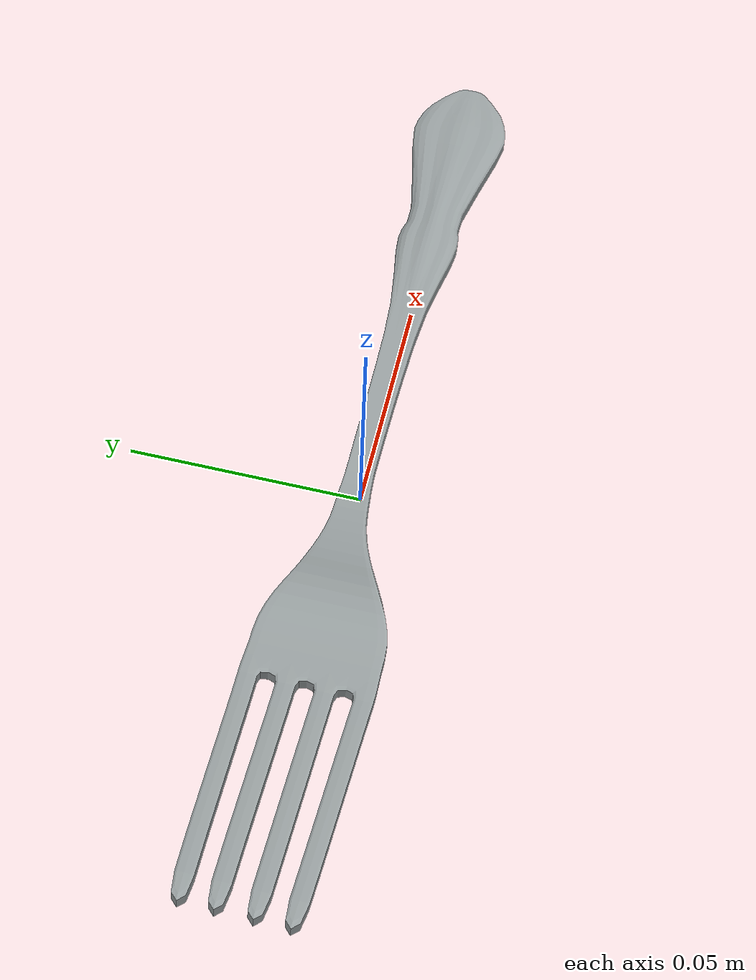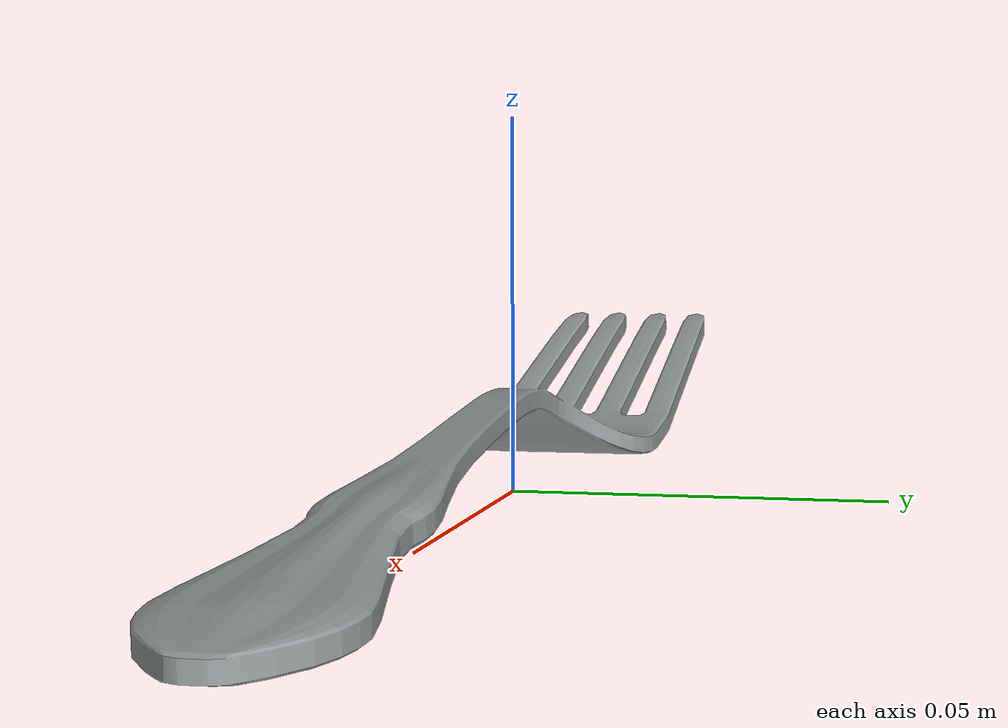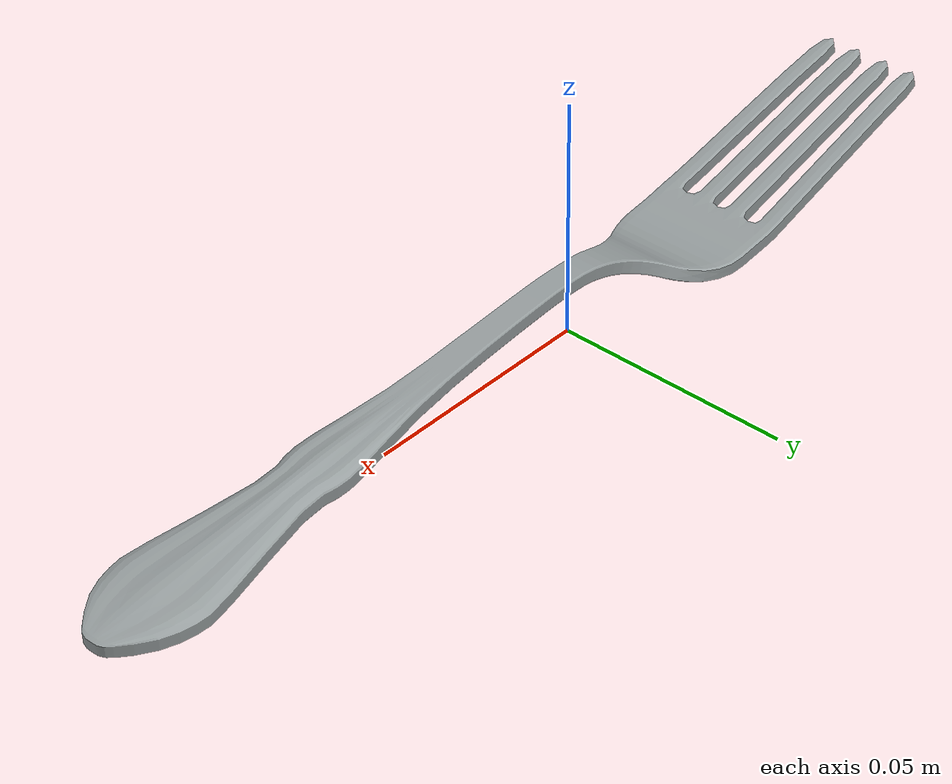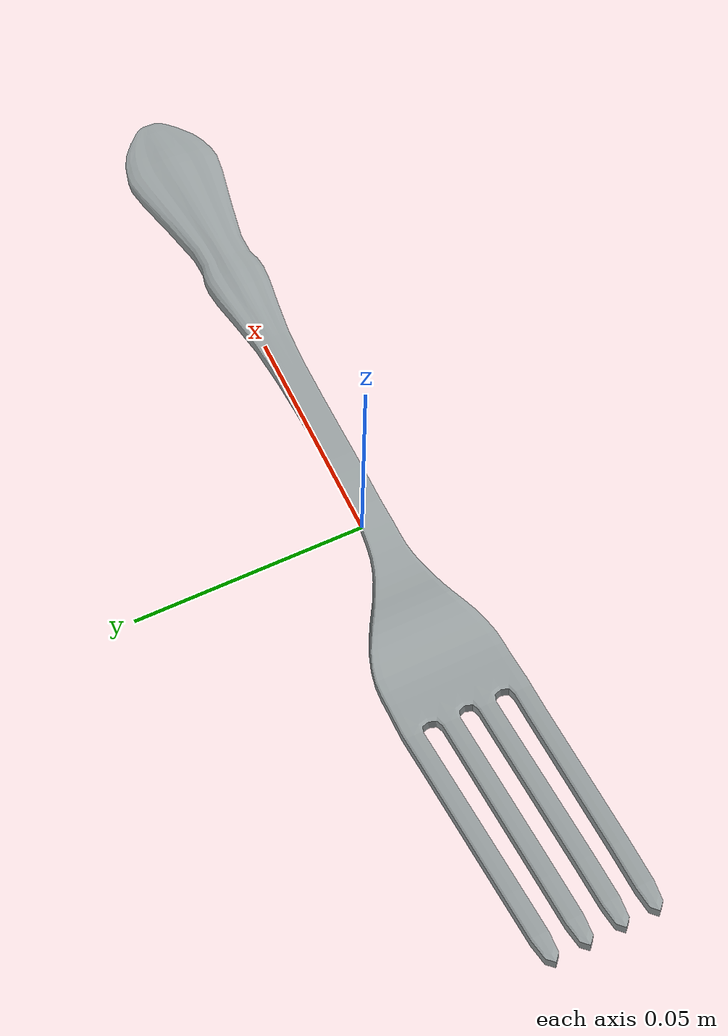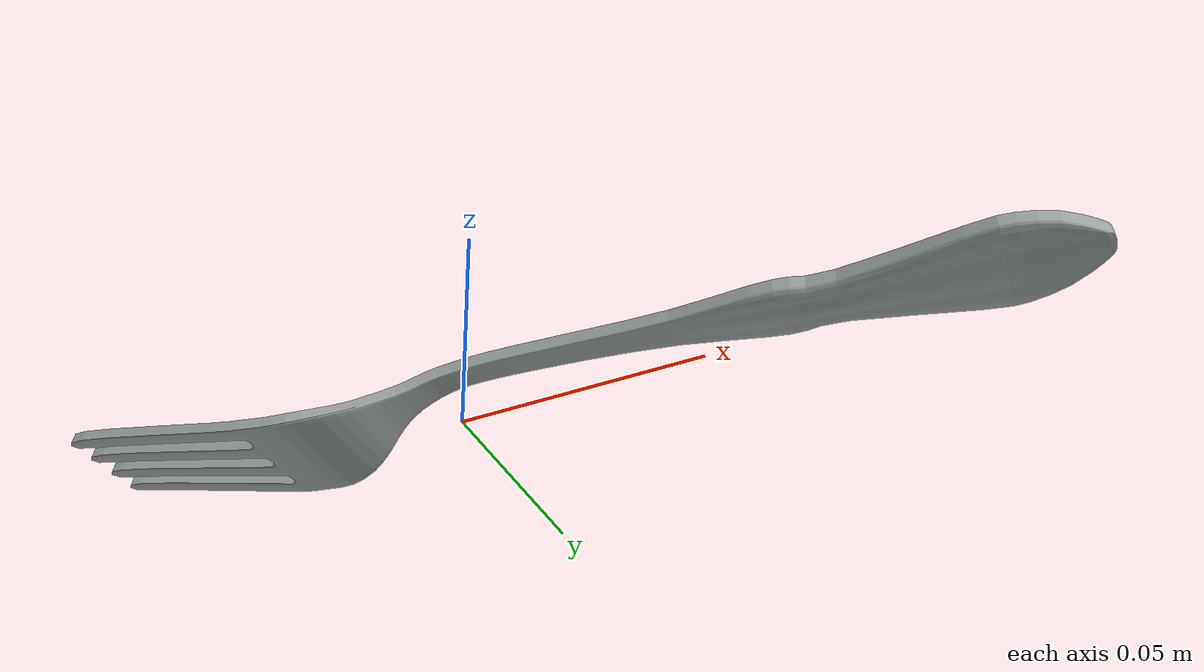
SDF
<?xml version="1.0" ?>
<sdf version='1.4'>
  <model name="fork">
      <static>0</static>
      <link name='link'>
        <inertial>
          <mass>0.05</mass>
          <inertia>
            <ixx>4.32234373333e-06</ixx>
            <ixy>0.000000</ixy>
            <ixz>0.000000</ixz>
            <iyy>0.000194938483733</iyy>
            <iyz>0.000000</iyz>
            <izz>0.000196601473333</izz>
          </inertia>
        </inertial>
        <collision name='collision'>
          <geometry>
            <mesh>
              <uri>model://fork/meshes/fork_collision.stl</uri>
              <scale>1 1 1</scale>
            </mesh>
          </geometry>
          <surface>
            <friction>
              <ode>
                <mu>30.0</mu>
                <mu2>30.0</mu2>
              </ode>
            </friction>
            <contact>
              <ode>
                <kp>1000000.0</kp>
                <kd>1000000.0</kd>
                <max_vel>1.0</max_vel>
                <min_depth>0.002</min_depth>
              </ode>
            </contact>
          </surface>
        </collision>
        <visual name='visual'>
          <geometry>
            <mesh>
              <uri>model://fork/meshes/fork.dae</uri>
              <scale>1 1 1</scale>
            </mesh>
          </geometry>

        </visual>
        <velocity_decay>
          <linear>0.000000</linear>
          <angular>0.000000</angular>
        </velocity_decay>
        <self_collide>0</self_collide>
        <kinematic>0</kinematic>
        <gravity>1</gravity>
      </link>
  </model>
</sdf>
